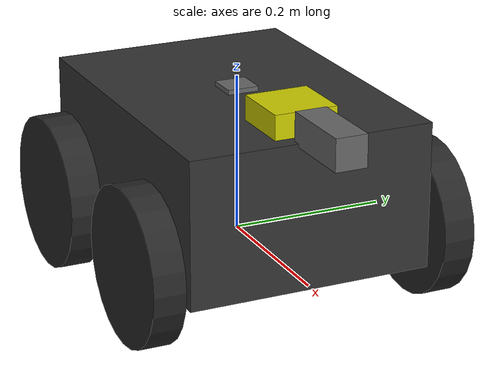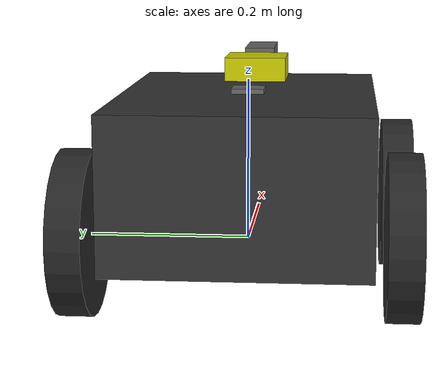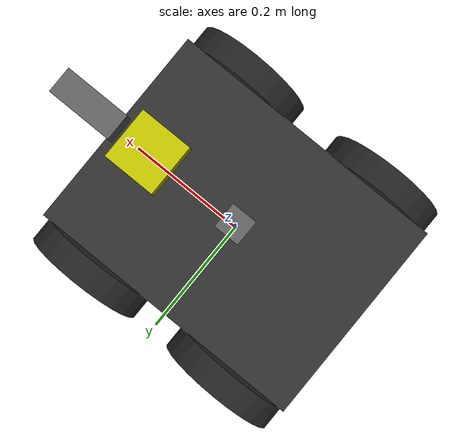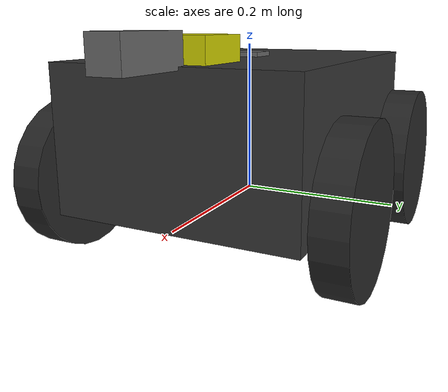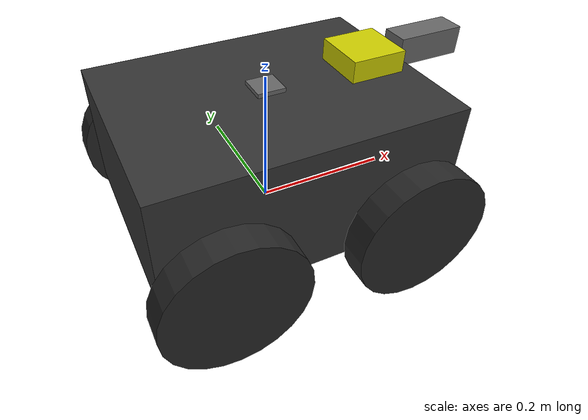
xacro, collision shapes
<?xml version="1.0"?>
<robot name="jackal" xmlns:xacro="http://www.ros.org/wiki/xacro">
  <xacro:arg name="is_sim" default="true" />
  <xacro:arg name="prefix" default="" />
  <xacro:property name="PI" value="3.1415926535897931" />

  <xacro:property name="wheelbase" value="0.262" />
  <xacro:property name="track" value="0.37559" />
  <xacro:property name="wheel_vertical_offset" value="0.0345" />
  <xacro:property name="footprint_vertical_offset" value="-0.0655" />

  <xacro:property name="wheel_radius" value="0.098" />
  <xacro:property name="wheel_width" value="0.040" />

  <xacro:property name="chassis_length" value="0.420" />
  <xacro:property name="chassis_width" value="0.310" />
  <xacro:property name="chassis_height" value="0.184" />

  <xacro:property name="dummy_inertia" value="1e-09"/>

  <xacro:property name="mount_spacing" value="0.120" />

  <material name="dark_grey"><color rgba="0.2 0.2 0.2 1.0" /></material>
  <material name="light_grey"><color rgba="0.4 0.4 0.4 1.0" /></material>
  <material name="yellow"><color rgba="0.8 0.8 0.0 1.0" /></material>
  <material name="black"><color rgba="0.15 0.15 0.15 1.0" /></material>

  <link name="base_link"></link>

  <joint name="base_link_joint" type="fixed">
    <origin xyz="0 0 0" rpy="0 0 0" />
    <parent link="base_link"/>
    <child link="chassis_link" />
  </joint>

  <link name="chassis_link">
    <visual>
      <origin xyz="0 0 ${footprint_vertical_offset}" rpy="${PI/2} 0 ${PI/2}"/>
      <geometry>
        <mesh filename="package://jackal_helper/meshes/jackal-base.stl"/>
      </geometry>
      <material name="dark_grey" />
    </visual>
    <collision>
      <origin xyz="0 0 ${chassis_height/2}"/>
      <geometry>
        <box size="${chassis_length} ${chassis_width} ${chassis_height}"/>
      </geometry>
    </collision>
    <inertial>
      <!-- Center of mass -->
      <origin xyz="0.012  0.002 0.067" rpy="0 0 0"/>
      <mass value="16.523"/>
      <!-- Moments of inertia: ( chassis without wheels ) -->
      <inertia
        ixx="0.3136" ixy="-0.0008" ixz="0.0164"
        iyy="0.3922" iyz="-0.0009"
        izz="0.4485"/>
      </inertial>
  </link>

  <!-- Bring in simulation data for Gazebo. -->
  <xacro:if value="$(arg is_sim)">
    <gazebo>
      <plugin filename="gz-sim-diff-drive-system"
              name="gz::sim::systems::DiffDrive">

        <left_joint>front_left_wheel_joint</left_joint>
        <left_joint>rear_left_wheel_joint</left_joint>

        <right_joint>front_right_wheel_joint</right_joint>
        <right_joint>rear_right_wheel_joint</right_joint>

        <wheel_separation>${track}</wheel_separation>
        <wheel_radius>${wheel_radius}</wheel_radius>

        <topic>cmd_vel</topic>
        <odom_topic>odom</odom_topic>
        <tf_topic>tf</tf_topic>

        <frame_id>odom</frame_id>
        <child_frame_id>base_link</child_frame_id>

        <odom_publish_frequency>50</odom_publish_frequency>
      </plugin>
    </gazebo>
  </xacro:if>

  <!-- Wheel macro -->
  <xacro:macro name="jackal_wheel" params="name x y">
    <link name="${name}_wheel_link">
      <visual>
        <origin xyz="0 0 0" rpy="${PI/2} 0 0"/>
        <geometry>
          <mesh filename="package://jackal_helper/meshes/jackal-wheel.stl"/>
        </geometry>
        <material name="black"/>
      </visual>

      <collision>
        <!-- Cylinder default axis is Z, rotate it so the axle is along Y -->
        <origin xyz="0 0 0" rpy="${PI/2} 0 0"/>
        <geometry>
          <cylinder radius="${wheel_radius}" length="${wheel_width}"/>
        </geometry>
      </collision>

      <inertial>
        <origin xyz="0 0 0" rpy="0 0 0"/>
        <mass value="0.5"/>
        <inertia
          ixx="0.001" ixy="0" ixz="0"
          iyy="0.001" iyz="0"
          izz="0.001"/>
      </inertial>
    </link>

    <joint name="${name}_wheel_joint" type="continuous">
      <parent link="chassis_link"/>
      <child link="${name}_wheel_link"/>
      <!-- IMPORTANT: no rotation here -->
      <origin xyz="${x} ${y} ${wheel_vertical_offset}" rpy="0 0 0"/>

      <!-- Wheel axle is along Y -->
      <axis xyz="0 1 0"/>
    </joint>

    <!-- Wheel friction for Gazebo -->
    <xacro:if value="$(arg is_sim)">
      <gazebo reference="${name}_wheel_link">
        <mu1>100.0</mu1>
        <mu2>100.0</mu2>
        <kp>1000000.0</kp>
        <kd>100.0</kd>
      </gazebo>
    </xacro:if>
  </xacro:macro>

  <!-- Four Jackal wheels -->
  <xacro:jackal_wheel name="front_left"  x="${wheelbase/2}"  y="${track/2}"/>
  <xacro:jackal_wheel name="front_right" x="${wheelbase/2}"  y="${-track/2}"/>
  <xacro:jackal_wheel name="rear_left"   x="${-wheelbase/2}" y="${track/2}"/>
  <xacro:jackal_wheel name="rear_right"  x="${-wheelbase/2}" y="${-track/2}"/>

  <!-- Hokuyo LiDAR -->
  <link name="lidar_link">
    <visual>
      <origin xyz="0 0 0" rpy="0 0 0"/>
      <geometry>
        <mesh filename="package://jackal_helper/meshes/hokuyo_ust10.stl" scale="1 1 1"/>
      </geometry>
      <material name="yellow"/>
    </visual>

    <collision>
      <origin xyz="0 0 0" rpy="0 0 0"/>
      <geometry>
        <box size="0.08 0.08 0.05"/>
      </geometry>
    </collision>

    <inertial>
      <origin xyz="0 0 0" rpy="0 0 0"/>
      <mass value="0.1"/>
      <inertia
        ixx="${dummy_inertia}" ixy="0" ixz="0"
        iyy="${dummy_inertia}" iyz="0"
        izz="${dummy_inertia}"/>
    </inertial>
  </link>

  <joint name="lidar_joint" type="fixed">
    <parent link="chassis_link"/>
    <child link="lidar_link"/>
    <origin xyz="0.15 0 0.19" rpy="0 0 0"/>
  </joint>

  <!-- Gazebo LiDAR sensor -->
  <xacro:if value="$(arg is_sim)">
    <gazebo reference="lidar_link">
      <sensor name="lidar_sensor" type="gpu_lidar">
        <pose>0 0 0 0 0 0</pose>
        <topic>scan</topic>
        <gz_frame_id>lidar_link</gz_frame_id>
        <update_rate>10</update_rate>

        <ray>
          <scan>
            <horizontal>
              <samples>360</samples>
              <resolution>1</resolution>
              <min_angle>-3.14159</min_angle>
              <max_angle>3.14159</max_angle>
            </horizontal>
          </scan>

          <range>
            <min>0.12</min>
            <max>10.0</max>
            <resolution>0.01</resolution>
          </range>

          <noise>
            <type>gaussian</type>
            <mean>0.0</mean>
            <stddev>0.01</stddev>
          </noise>
        </ray>

        <always_on>true</always_on>
        <visualize>true</visualize>
      </sensor>
    </gazebo>
  </xacro:if>

  <!-- ZED Camera -->
  <link name="zed_camera_link">
    <visual>
      <origin xyz="0 0 0" rpy="0 0 0"/>
      <geometry>
        <mesh filename="package://jackal_helper/meshes/zed.stl" scale="1 1 1"/>
      </geometry>
      <material name="light_grey"/>
    </visual>

    <collision>
      <origin xyz="0 0 0" rpy="0 0 0"/>
      <geometry>
        <box size="0.10 0.04 0.04"/>
      </geometry>
    </collision>

    <inertial>
      <origin xyz="0 0 0" rpy="0 0 0"/>
      <mass value="0.1"/>
      <inertia
        ixx="${dummy_inertia}" ixy="0" ixz="0"
        iyy="${dummy_inertia}" iyz="0"
        izz="${dummy_inertia}"/>
    </inertial>
  </link>

  <joint name="zed_camera_joint" type="fixed">
    <parent link="chassis_link"/>
    <child link="zed_camera_link"/>
    <origin xyz="0.25 0 0.20" rpy="0 0 0"/>
  </joint>

  <!-- Gazebo RGB camera sensor -->
  <xacro:if value="$(arg is_sim)">
    <gazebo reference="zed_camera_link">
      <sensor name="zed_rgb_camera" type="camera">
        <always_on>true</always_on>
        <update_rate>10</update_rate>
        <visualize>true</visualize>

        <!-- This must match jackal_bridge.yaml -->
        <topic>camera/image_raw</topic>
        <gz_frame_id>zed_camera_link</gz_frame_id>

        <camera>
          <horizontal_fov>1.3962634</horizontal_fov>
          <image>
            <width>640</width>
            <height>480</height>
            <format>R8G8B8</format>
          </image>
          <clip>
            <near>0.05</near>
            <far>50.0</far>
          </clip>
        </camera>
      </sensor>
    </gazebo>
  </xacro:if>

  <!-- IMU link -->
  <link name="imu_link">
    <visual>
      <origin xyz="0 0 0" rpy="0 0 0"/>
      <geometry>
        <box size="0.04 0.04 0.02"/>
      </geometry>
      <material name="light_grey"/>
    </visual>

    <collision>
      <origin xyz="0 0 0" rpy="0 0 0"/>
      <geometry>
        <box size="0.04 0.04 0.02"/>
      </geometry>
    </collision>

    <inertial>
      <origin xyz="0 0 0" rpy="0 0 0"/>
      <mass value="0.05"/>
      <inertia
        ixx="${dummy_inertia}" ixy="0" ixz="0"
        iyy="${dummy_inertia}" iyz="0"
        izz="${dummy_inertia}"/>
    </inertial>
  </link>

  <joint name="imu_joint" type="fixed">
    <parent link="chassis_link"/>
    <child link="imu_link"/>
    <origin xyz="0 0 0.18" rpy="0 0 0"/>
  </joint>

  <!-- Gazebo IMU sensor -->
  <xacro:if value="$(arg is_sim)">
    <gazebo reference="imu_link">
      <sensor name="imu_sensor" type="imu">
        <pose>0 0 0 0 0 0</pose>
        <topic>imu</topic>
        <gz_frame_id>imu_link</gz_frame_id>
        <update_rate>50</update_rate>
        <always_on>true</always_on>
        <visualize>true</visualize>
      </sensor>
    </gazebo>
  </xacro:if>

</robot>
